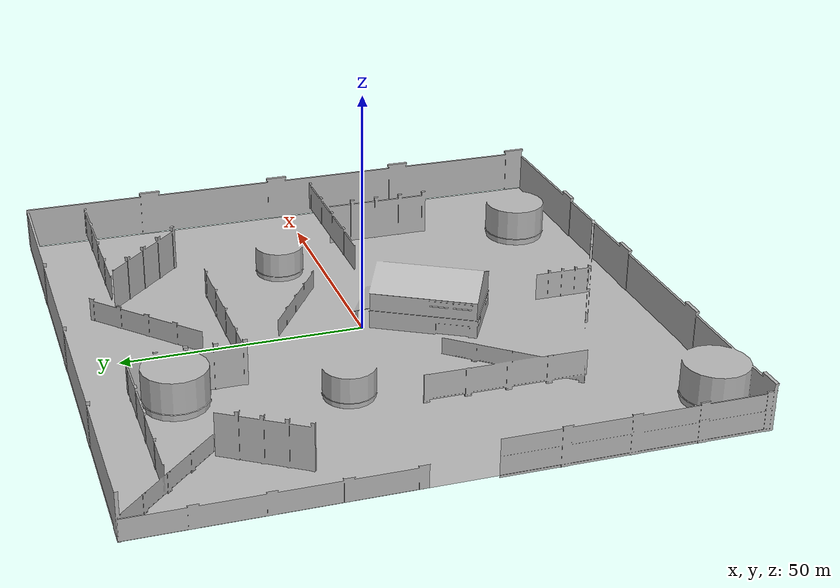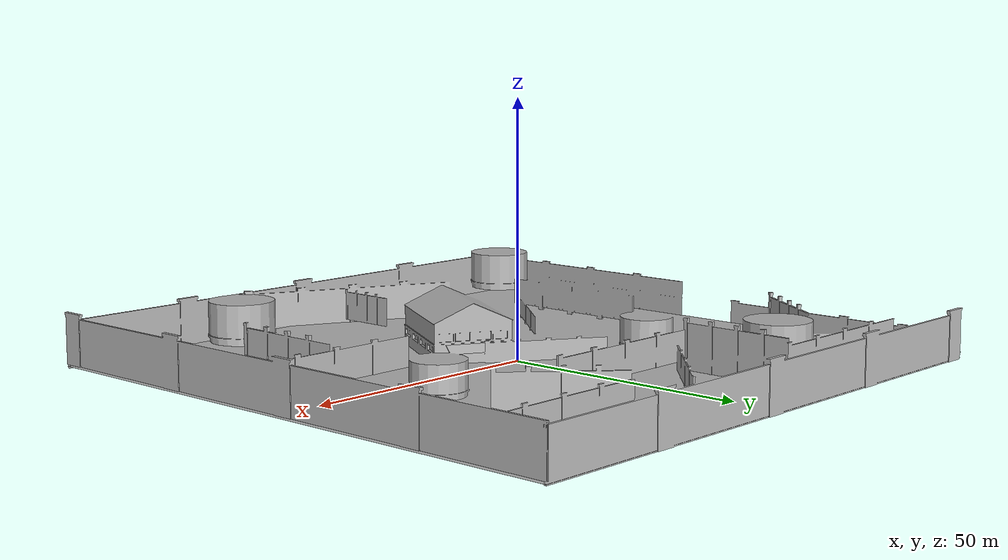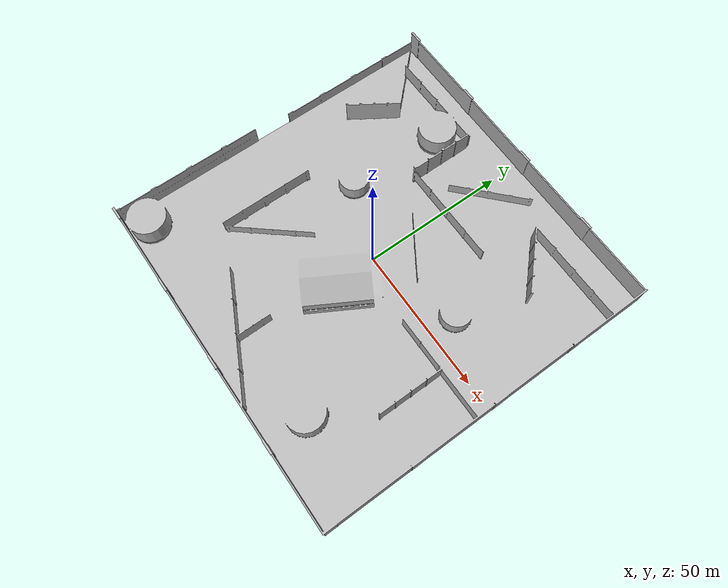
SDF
<?xml version="1.0" ?>
<sdf version="1.6">
  <model name="Room 11">
    <link name="link">
      <visual name="visual">
	    <geometry>
          <mesh>
            <uri>model://room11/meshes/room_11.dae</uri>
          </mesh>
        </geometry>
      </visual>
      <collision name="collision">
        <geometry>
          <mesh>
            <uri>model://room11/meshes/room_11.dae</uri>
          </mesh>
        </geometry>
      </collision>
</link>
  <static>1</static>
  </model>
</sdf>
